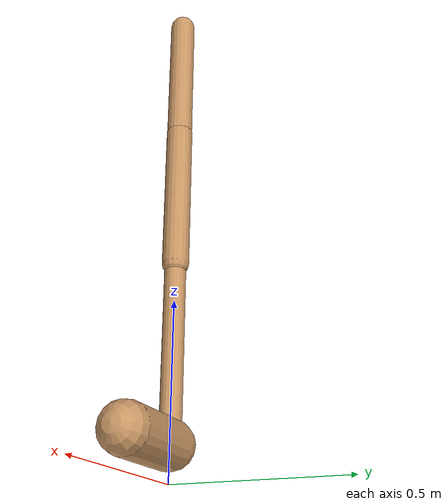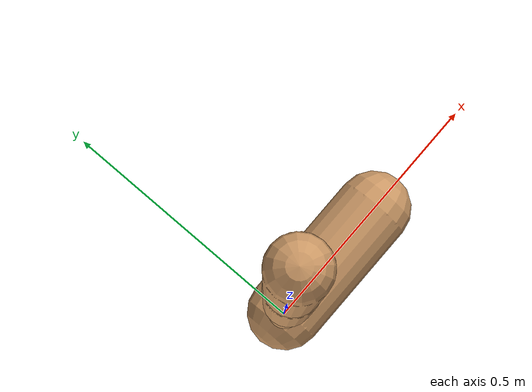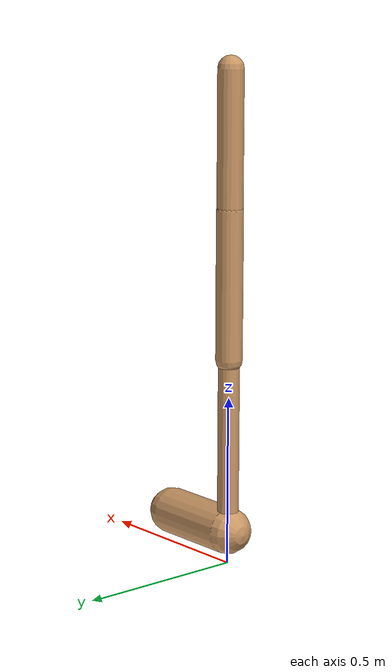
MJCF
<mujoco model="walker2d">
  <compiler angle="degree" coordinate="global" inertiafromgeom="true" />
  <default>
    <joint armature="0.01" damping=".1" limited="true" />
    <geom conaffinity="0" condim="3" contype="1" density="1000" friction="0.8 .1 .1" rgba="0.8 0.6 .4 1" />
  </default>
  <option integrator="RK4" timestep="0.002" />
  <worldbody>

    <body name="torso" pos="0 0 -0.03101858746904256">
      <joint armature="0" axis="1 0 0" damping="0" limited="false" name="ignorex" pos="0 0 0" stiffness="0" type="slide" />
      <joint armature="0" axis="0 0 1" damping="0" limited="false" name="ignorez" pos="0 0 0" ref="1.25" stiffness="0" type="slide" />
      <joint armature="0" axis="0 1 0" damping="0" limited="false" name="ignorey" pos="0 0 0" stiffness="0" type="hinge" />
      <geom fromto="0 0 1.45 0 0 1.05" name="torso_geom" size="0.0380158559824407" type="capsule" />
      <body name="thigh">
        <joint axis="0 -1 0" name="thigh_joint" pos="0 0 1.05" range="-150 0" type="hinge" />
        <geom fromto="0.0 0.0 1.05 0.0 0.0 0.6146930151169149" name="thigh_geom" size="0.039197847248453405" type="capsule" />
        <body name="leg" pos="0.0 0.0 0.014693015116914898">
          <joint axis="0 -1 0" name="leg_joint" pos="0 0 0.6" range="-150 0" type="hinge" />
          <geom fromto="0.0 0.0 0.6 0.0 0.0 0.11632557235212766" name="leg_geom" size="0.03135827779876272" type="capsule" />
          <body name="foot" pos="0.0 0.0 0.016325572352127657">
            <joint axis="0 -1 0" name="foot_joint" pos="0 0 0.1" range="-45 45" type="hinge" />
            <geom fromto="-0.0 0.0 0.1 0.25072192609996974 0.0 0.1" name="foot_geom" size="0.06894226103979463" type="capsule" />
          </body>
        </body>
      </body>

      <body name="thigh_left">
        <joint axis="0 -1 0" name="thigh_left_joint" pos="0 0 1.05" range="-150 0" type="hinge" />
        <geom fromto="0.0 0.0 1.05 0.0 0.0 0.6146930151169149" name="thigh_left_geom" rgba=".7 .3 .6 1" size="0.039197847248453405" type="capsule" />
        <body name="leg_left" pos="0.0 0.0 0.014693015116914898">
          <joint axis="0 -1 0" name="leg_left_joint" pos="0 0 0.6" range="-150 0" type="hinge" />
          <geom fromto="0.0 0.0 0.6 0.0 0.0 0.11632557235212766" name="leg_left_geom" rgba=".7 .3 .6 1" size="0.03135827779876272" type="capsule" />
          <body name="foot_left" pos="0.0 0.0 0.016325572352127657">
            <joint axis="0 -1 0" name="foot_left_joint" pos="0 0 0.1" range="-45 45" type="hinge" />
            <geom fromto="-0.0 0.0 0.1 0.25072192609996974 0.0 0.1" name="foot_left_geom" rgba=".7 .3 .6 1" size="0.06894226103979463" type="capsule" />
          </body>
        </body>
      </body>
    </body>
  </worldbody>
  <actuator>

    <motor ctrllimited="true" ctrlrange="-1.0 1.0" gear="100" joint="thigh_joint" />
    <motor ctrllimited="true" ctrlrange="-1.0 1.0" gear="100" joint="leg_joint" />
    <motor ctrllimited="true" ctrlrange="-1.0 1.0" gear="100" joint="foot_joint" />
    <motor ctrllimited="true" ctrlrange="-1.0 1.0" gear="100" joint="thigh_left_joint" />
    <motor ctrllimited="true" ctrlrange="-1.0 1.0" gear="100" joint="leg_left_joint" />
    <motor ctrllimited="true" ctrlrange="-1.0 1.0" gear="100" joint="foot_left_joint" />

  </actuator>
</mujoco>
